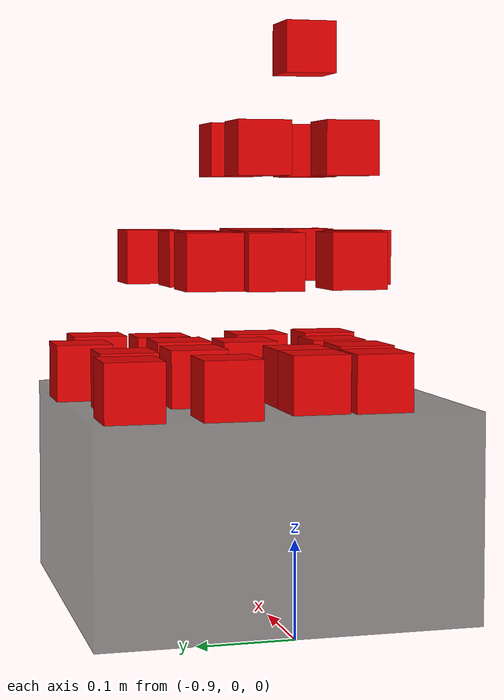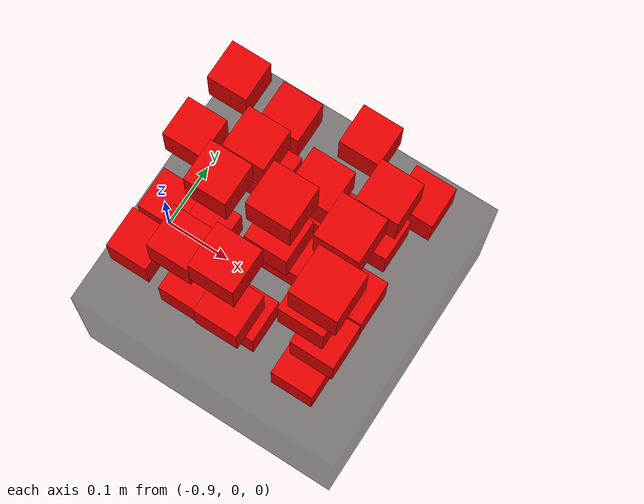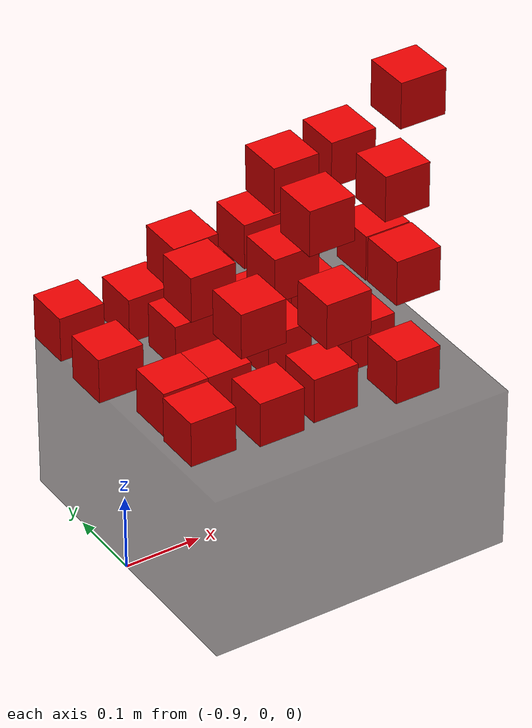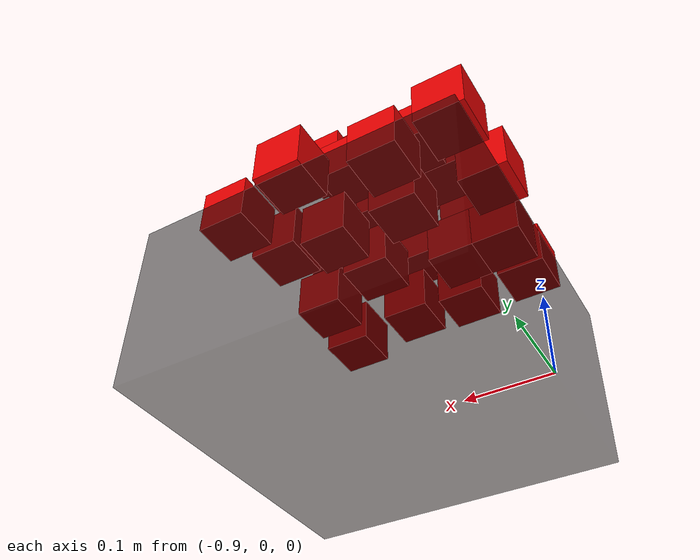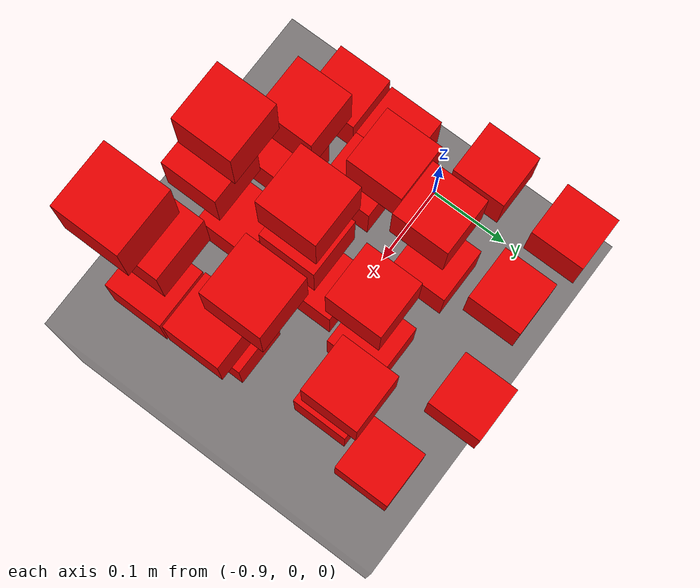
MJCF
<mujoco>
    <worldbody>
		<body pos="-0.7 0 0.11">
            <geom type="box" size="0.19999999999999998 0.19999999999999998 0.11" rgba="0 0 0 0.5"/>
        </body>
        <body pos="-0.594 -0.122 0.25">
            <joint type="free"/>
            <geom type="box" solimp=".999 .999 .0001" solref=".0001 1" size="0.03 0.03 0.03" rgba="0.9 0 0 1"/>
        </body>
        <body pos="-0.601 -0.039 0.25">
            <joint type="free"/>
            <geom type="box" solimp=".999 .999 .0001" solref=".0001 1" size="0.03 0.03 0.03" rgba="0.9 0 0 1"/>
        </body>
        <body pos="-0.611 0.077 0.25">
            <joint type="free"/>
            <geom type="box" solimp=".999 .999 .0001" solref=".0001 1" size="0.03 0.03 0.03" rgba="0.9 0 0 1"/>
        </body>
        <body pos="-0.585 0.145 0.25">
            <joint type="free"/>
            <geom type="box" solimp=".999 .999 .0001" solref=".0001 1" size="0.03 0.03 0.03" rgba="0.9 0 0 1"/>
        </body>
        <body pos="-0.694 -0.102 0.25">
            <joint type="free"/>
            <geom type="box" solimp=".999 .999 .0001" solref=".0001 1" size="0.03 0.03 0.03" rgba="0.9 0 0 1"/>
        </body>
        <body pos="-0.692 -0.002 0.25">
            <joint type="free"/>
            <geom type="box" solimp=".999 .999 .0001" solref=".0001 1" size="0.03 0.03 0.03" rgba="0.9 0 0 1"/>
        </body>
        <body pos="-0.675 0.068 0.25">
            <joint type="free"/>
            <geom type="box" solimp=".999 .999 .0001" solref=".0001 1" size="0.03 0.03 0.03" rgba="0.9 0 0 1"/>
        </body>
        <body pos="-0.685 0.178 0.25">
            <joint type="free"/>
            <geom type="box" solimp=".999 .999 .0001" solref=".0001 1" size="0.03 0.03 0.03" rgba="0.9 0 0 1"/>
        </body>
        <body pos="-0.771 -0.108 0.25">
            <joint type="free"/>
            <geom type="box" solimp=".999 .999 .0001" solref=".0001 1" size="0.03 0.03 0.03" rgba="0.9 0 0 1"/>
        </body>
        <body pos="-0.795 -0.033 0.25">
            <joint type="free"/>
            <geom type="box" solimp=".999 .999 .0001" solref=".0001 1" size="0.03 0.03 0.03" rgba="0.9 0 0 1"/>
        </body>
        <body pos="-0.772 0.073 0.25">
            <joint type="free"/>
            <geom type="box" solimp=".999 .999 .0001" solref=".0001 1" size="0.03 0.03 0.03" rgba="0.9 0 0 1"/>
        </body>
        <body pos="-0.789 0.149 0.25">
            <joint type="free"/>
            <geom type="box" solimp=".999 .999 .0001" solref=".0001 1" size="0.03 0.03 0.03" rgba="0.9 0 0 1"/>
        </body>
        <body pos="-0.857 -0.098 0.25">
            <joint type="free"/>
            <geom type="box" solimp=".999 .999 .0001" solref=".0001 1" size="0.03 0.03 0.03" rgba="0.9 0 0 1"/>
        </body>
        <body pos="-0.853 -0.033 0.25">
            <joint type="free"/>
            <geom type="box" solimp=".999 .999 .0001" solref=".0001 1" size="0.03 0.03 0.03" rgba="0.9 0 0 1"/>
        </body>
        <body pos="-0.881 0.064 0.25">
            <joint type="free"/>
            <geom type="box" solimp=".999 .999 .0001" solref=".0001 1" size="0.03 0.03 0.03" rgba="0.9 0 0 1"/>
        </body>
        <body pos="-0.876 0.16 0.25">
            <joint type="free"/>
            <geom type="box" solimp=".999 .999 .0001" solref=".0001 1" size="0.03 0.03 0.03" rgba="0.9 0 0 1"/>
        </body>
        <body pos="-0.581 -0.1 0.37">
            <joint type="free"/>
            <geom type="box" solimp=".999 .999 .0001" solref=".0001 1" size="0.03 0.03 0.03" rgba="0.9 0 0 1"/>
        </body>
        <body pos="-0.582 -0.038 0.37">
            <joint type="free"/>
            <geom type="box" solimp=".999 .999 .0001" solref=".0001 1" size="0.03 0.03 0.03" rgba="0.9 0 0 1"/>
        </body>
        <body pos="-0.61 0.089 0.37">
            <joint type="free"/>
            <geom type="box" solimp=".999 .999 .0001" solref=".0001 1" size="0.03 0.03 0.03" rgba="0.9 0 0 1"/>
        </body>
        <body pos="-0.696 -0.13 0.37">
            <joint type="free"/>
            <geom type="box" solimp=".999 .999 .0001" solref=".0001 1" size="0.03 0.03 0.03" rgba="0.9 0 0 1"/>
        </body>
        <body pos="-0.696 -0.022 0.37">
            <joint type="free"/>
            <geom type="box" solimp=".999 .999 .0001" solref=".0001 1" size="0.03 0.03 0.03" rgba="0.9 0 0 1"/>
        </body>
        <body pos="-0.687 0.057 0.37">
            <joint type="free"/>
            <geom type="box" solimp=".999 .999 .0001" solref=".0001 1" size="0.03 0.03 0.03" rgba="0.9 0 0 1"/>
        </body>
        <body pos="-0.787 -0.094 0.37">
            <joint type="free"/>
            <geom type="box" solimp=".999 .999 .0001" solref=".0001 1" size="0.03 0.03 0.03" rgba="0.9 0 0 1"/>
        </body>
        <body pos="-0.796 -0.002 0.37">
            <joint type="free"/>
            <geom type="box" solimp=".999 .999 .0001" solref=".0001 1" size="0.03 0.03 0.03" rgba="0.9 0 0 1"/>
        </body>
        <body pos="-0.781 0.059 0.37">
            <joint type="free"/>
            <geom type="box" solimp=".999 .999 .0001" solref=".0001 1" size="0.03 0.03 0.03" rgba="0.9 0 0 1"/>
        </body>
        <body pos="-0.598 -0.099 0.49">
            <joint type="free"/>
            <geom type="box" solimp=".999 .999 .0001" solref=".0001 1" size="0.03 0.03 0.03" rgba="0.9 0 0 1"/>
        </body>
        <body pos="-0.61 -0.007 0.49">
            <joint type="free"/>
            <geom type="box" solimp=".999 .999 .0001" solref=".0001 1" size="0.03 0.03 0.03" rgba="0.9 0 0 1"/>
        </body>
        <body pos="-0.708 -0.112 0.49">
            <joint type="free"/>
            <geom type="box" solimp=".999 .999 .0001" solref=".0001 1" size="0.03 0.03 0.03" rgba="0.9 0 0 1"/>
        </body>
        <body pos="-0.694 -0.017 0.49">
            <joint type="free"/>
            <geom type="box" solimp=".999 .999 .0001" solref=".0001 1" size="0.03 0.03 0.03" rgba="0.9 0 0 1"/>
        </body>
        <body pos="-0.582 -0.103 0.61">
            <joint type="free"/>
            <geom type="box" solimp=".999 .999 .0001" solref=".0001 1" size="0.03 0.03 0.03" rgba="0.9 0 0 1"/>
        </body>
    </worldbody>
</mujoco>
